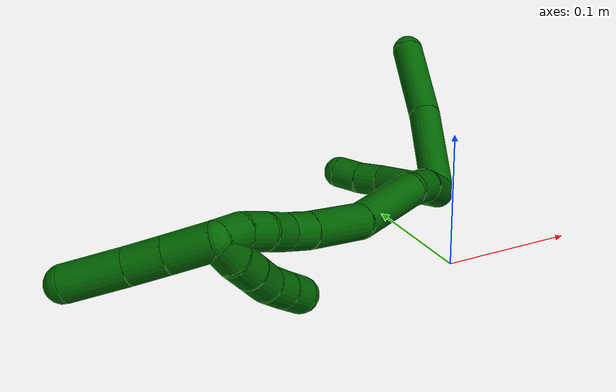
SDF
<sdf version="1.7">
 <world name="default">
  <model name="6">
   <static>0</static>
   <link name="6">
    <collision name="collision-cylinder-e_1_2_8">
     <pose>0.034886 -0.01831 0.001434 1.49261 1.08621 1.01825</pose>
     <geometry><cylinder><radius>0.0125</radius><length>0.078851</length></cylinder></geometry>
     <surface>
      <friction><ode><mu>1.16</mu><mu2>1.16</mu2><slip1>0</slip1><slip2>0</slip2></ode></friction>
      <contact><ode><kp>1e+06</kp><kd>1</kd><max_vel>0</max_vel><min_depth>0.001</min_depth></ode></contact>
     </surface>
    </collision>
    <visual name="visual-cylinder-e_1_2_8">
     <pose>0.034886 -0.01831 0.001434 1.49261 1.08621 1.01825</pose>
     <geometry><cylinder><radius>0.0125</radius><length>0.078851</length></cylinder></geometry>
     <material><ambient>0 0.392157 0.003922 1</ambient></material>
    </visual>
    <collision name="collision-cylinder-e_2_8_6">
     <pose>0.099933 -0.055207 0.006099 1.39875 1.01182 0.872228</pose>
     <geometry><cylinder><radius>0.0125</radius><length>0.071149</length></cylinder></geometry>
     <surface>
      <friction><ode><mu>1.16</mu><mu2>1.16</mu2><slip1>0</slip1><slip2>0</slip2></ode></friction>
      <contact><ode><kp>1e+06</kp><kd>1</kd><max_vel>0</max_vel><min_depth>0.001</min_depth></ode></contact>
     </surface>
    </collision>
    <visual name="visual-cylinder-e_2_8_6">
     <pose>0.099933 -0.055207 0.006099 1.39875 1.01182 0.872228</pose>
     <geometry><cylinder><radius>0.0125</radius><length>0.071149</length></cylinder></geometry>
     <material><ambient>0 0.392157 0.003922 1</ambient></material>
    </visual>
    <collision name="collision-cylinder-e_1_2_9">
     <pose>0.016898 -0.003926 0.023812 0.163394 0.610862 0.051621</pose>
     <geometry><cylinder><radius>0.0125</radius><length>0.058922</length></cylinder></geometry>
     <surface>
      <friction><ode><mu>1.16</mu><mu2>1.16</mu2><slip1>0</slip1><slip2>0</slip2></ode></friction>
      <contact><ode><kp>1e+06</kp><kd>1</kd><max_vel>0</max_vel><min_depth>0.001</min_depth></ode></contact>
     </surface>
    </collision>
    <visual name="visual-cylinder-e_1_2_9">
     <pose>0.016898 -0.003926 0.023812 0.163394 0.610862 0.051621</pose>
     <geometry><cylinder><radius>0.0125</radius><length>0.058922</length></cylinder></geometry>
     <material><ambient>0 0.392157 0.003922 1</ambient></material>
    </visual>
    <collision name="collision-cylinder-e_2_9_10">
     <pose>0.037312 -0.010682 0.056883 0.296688 0.34826 0.052565</pose>
     <geometry><cylinder><radius>0.0125</radius><length>0.020604</length></cylinder></geometry>
     <surface>
      <friction><ode><mu>1.16</mu><mu2>1.16</mu2><slip1>0</slip1><slip2>0</slip2></ode></friction>
      <contact><ode><kp>1e+06</kp><kd>1</kd><max_vel>0</max_vel><min_depth>0.001</min_depth></ode></contact>
     </surface>
    </collision>
    <visual name="visual-cylinder-e_2_9_10">
     <pose>0.037312 -0.010682 0.056883 0.296688 0.34826 0.052565</pose>
     <geometry><cylinder><radius>0.0125</radius><length>0.020604</length></cylinder></geometry>
     <material><ambient>0 0.392157 0.003922 1</ambient></material>
    </visual>
    <collision name="collision-cylinder-e_3_10_5">
     <pose>0.045135 -0.017125 0.0747 0.399395 0.434266 0.089242</pose>
     <geometry><cylinder><radius>0.0125</radius><length>0.020475</length></cylinder></geometry>
     <surface>
      <friction><ode><mu>1.16</mu><mu2>1.16</mu2><slip1>0</slip1><slip2>0</slip2></ode></friction>
      <contact><ode><kp>1e+06</kp><kd>1</kd><max_vel>0</max_vel><min_depth>0.001</min_depth></ode></contact>
     </surface>
    </collision>
    <visual name="visual-cylinder-e_3_10_5">
     <pose>0.045135 -0.017125 0.0747 0.399395 0.434266 0.089242</pose>
     <geometry><cylinder><radius>0.0125</radius><length>0.020475</length></cylinder></geometry>
     <material><ambient>0 0.392157 0.003922 1</ambient></material>
    </visual>
    <collision name="collision-cylinder-e_1_2_11">
     <pose>-0.030693 -0.017772 -0.004792 1.83416 -1.0306 -1.27318</pose>
     <geometry><cylinder><radius>0.0125</radius><length>0.071579</length></cylinder></geometry>
     <surface>
      <friction><ode><mu>1.16</mu><mu2>1.16</mu2><slip1>0</slip1><slip2>0</slip2></ode></friction>
      <contact><ode><kp>1e+06</kp><kd>1</kd><max_vel>0</max_vel><min_depth>0.001</min_depth></ode></contact>
     </surface>
    </collision>
    <visual name="visual-cylinder-e_1_2_11">
     <pose>-0.030693 -0.017772 -0.004792 1.83416 -1.0306 -1.27318</pose>
     <geometry><cylinder><radius>0.0125</radius><length>0.071579</length></cylinder></geometry>
     <material><ambient>0 0.392157 0.003922 1</ambient></material>
    </visual>
    <collision name="collision-cylinder-e_2_11_12">
     <pose>-0.075369 -0.042046 -0.008255 1.36927 -1.12769 -0.953044</pose>
     <geometry><cylinder><radius>0.0125</radius><length>0.030954</length></cylinder></geometry>
     <surface>
      <friction><ode><mu>1.16</mu><mu2>1.16</mu2><slip1>0</slip1><slip2>0</slip2></ode></friction>
      <contact><ode><kp>1e+06</kp><kd>1</kd><max_vel>0</max_vel><min_depth>0.001</min_depth></ode></contact>
     </surface>
    </collision>
    <visual name="visual-cylinder-e_2_11_12">
     <pose>-0.075369 -0.042046 -0.008255 1.36927 -1.12769 -0.953044</pose>
     <geometry><cylinder><radius>0.0125</radius><length>0.030954</length></cylinder></geometry>
     <material><ambient>0 0.392157 0.003922 1</ambient></material>
    </visual>
    <collision name="collision-cylinder-e_3_12_13">
     <pose>-0.118081 -0.055905 0.005007 0.552519 -1.1168 -0.350593</pose>
     <geometry><cylinder><radius>0.0125</radius><length>0.063935</length></cylinder></geometry>
     <surface>
      <friction><ode><mu>1.16</mu><mu2>1.16</mu2><slip1>0</slip1><slip2>0</slip2></ode></friction>
      <contact><ode><kp>1e+06</kp><kd>1</kd><max_vel>0</max_vel><min_depth>0.001</min_depth></ode></contact>
     </surface>
    </collision>
    <visual name="visual-cylinder-e_3_12_13">
     <pose>-0.118081 -0.055905 0.005007 0.552519 -1.1168 -0.350593</pose>
     <geometry><cylinder><radius>0.0125</radius><length>0.063935</length></cylinder></geometry>
     <material><ambient>0 0.392157 0.003922 1</ambient></material>
    </visual>
    <collision name="collision-cylinder-e_4_13_14">
     <pose>-0.166557 -0.074702 0.0274 0.830053 -0.905303 -0.422188</pose>
     <geometry><cylinder><radius>0.0125</radius><length>0.050207</length></cylinder></geometry>
     <surface>
      <friction><ode><mu>1.16</mu><mu2>1.16</mu2><slip1>0</slip1><slip2>0</slip2></ode></friction>
      <contact><ode><kp>1e+06</kp><kd>1</kd><max_vel>0</max_vel><min_depth>0.001</min_depth></ode></contact>
     </surface>
    </collision>
    <visual name="visual-cylinder-e_4_13_14">
     <pose>-0.166557 -0.074702 0.0274 0.830053 -0.905303 -0.422188</pose>
     <geometry><cylinder><radius>0.0125</radius><length>0.050207</length></cylinder></geometry>
     <material><ambient>0 0.392157 0.003922 1</ambient></material>
    </visual>
    <collision name="collision-cylinder-e_5_14_15">
     <pose>-0.193861 -0.091593 0.042194 0.899222 -0.826177 -0.416889</pose>
     <geometry><cylinder><radius>0.0125</radius><length>0.020554</length></cylinder></geometry>
     <surface>
      <friction><ode><mu>1.16</mu><mu2>1.16</mu2><slip1>0</slip1><slip2>0</slip2></ode></friction>
      <contact><ode><kp>1e+06</kp><kd>1</kd><max_vel>0</max_vel><min_depth>0.001</min_depth></ode></contact>
     </surface>
    </collision>
    <visual name="visual-cylinder-e_5_14_15">
     <pose>-0.193861 -0.091593 0.042194 0.899222 -0.826177 -0.416889</pose>
     <geometry><cylinder><radius>0.0125</radius><length>0.020554</length></cylinder></geometry>
     <material><ambient>0 0.392157 0.003922 1</ambient></material>
    </visual>
    <collision name="collision-cylinder-e_6_15_16">
     <pose>-0.209984 -0.103054 0.04861 1.23713 -0.932157 -0.687635</pose>
     <geometry><cylinder><radius>0.0125</radius><length>0.021337</length></cylinder></geometry>
     <surface>
      <friction><ode><mu>1.16</mu><mu2>1.16</mu2><slip1>0</slip1><slip2>0</slip2></ode></friction>
      <contact><ode><kp>1e+06</kp><kd>1</kd><max_vel>0</max_vel><min_depth>0.001</min_depth></ode></contact>
     </surface>
    </collision>
    <visual name="visual-cylinder-e_6_15_16">
     <pose>-0.209984 -0.103054 0.04861 1.23713 -0.932157 -0.687635</pose>
     <geometry><cylinder><radius>0.0125</radius><length>0.021337</length></cylinder></geometry>
     <material><ambient>0 0.392157 0.003922 1</ambient></material>
    </visual>
    <collision name="collision-cylinder-e_7_16_17">
     <pose>-0.226081 -0.114765 0.054453 0.987861 -0.83416 -0.46839</pose>
     <geometry><cylinder><radius>0.0125</radius><length>0.020332</length></cylinder></geometry>
     <surface>
      <friction><ode><mu>1.16</mu><mu2>1.16</mu2><slip1>0</slip1><slip2>0</slip2></ode></friction>
      <contact><ode><kp>1e+06</kp><kd>1</kd><max_vel>0</max_vel><min_depth>0.001</min_depth></ode></contact>
     </surface>
    </collision>
    <visual name="visual-cylinder-e_7_16_17">
     <pose>-0.226081 -0.114765 0.054453 0.987861 -0.83416 -0.46839</pose>
     <geometry><cylinder><radius>0.0125</radius><length>0.020332</length></cylinder></geometry>
     <material><ambient>0 0.392157 0.003922 1</ambient></material>
    </visual>
    <collision name="collision-cylinder-e_8_17_1">
     <pose>-0.242547 -0.124122 0.062466 0.709875 -1.01031 -0.404332</pose>
     <geometry><cylinder><radius>0.0125</radius><length>0.0211</length></cylinder></geometry>
     <surface>
      <friction><ode><mu>1.16</mu><mu2>1.16</mu2><slip1>0</slip1><slip2>0</slip2></ode></friction>
      <contact><ode><kp>1e+06</kp><kd>1</kd><max_vel>0</max_vel><min_depth>0.001</min_depth></ode></contact>
     </surface>
    </collision>
    <visual name="visual-cylinder-e_8_17_1">
     <pose>-0.242547 -0.124122 0.062466 0.709875 -1.01031 -0.404332</pose>
     <geometry><cylinder><radius>0.0125</radius><length>0.0211</length></cylinder></geometry>
     <material><ambient>0 0.392157 0.003922 1</ambient></material>
    </visual>
    <collision name="collision-cylinder-e_1_1_18">
     <pose>-0.25276 -0.128689 0.082198 0.058854 -0.082196 -0.002421</pose>
     <geometry><cylinder><radius>0.0125</radius><length>0.031116</length></cylinder></geometry>
     <surface>
      <friction><ode><mu>1.16</mu><mu2>1.16</mu2><slip1>0</slip1><slip2>0</slip2></ode></friction>
      <contact><ode><kp>1e+06</kp><kd>1</kd><max_vel>0</max_vel><min_depth>0.001</min_depth></ode></contact>
     </surface>
    </collision>
    <visual name="visual-cylinder-e_1_1_18">
     <pose>-0.25276 -0.128689 0.082198 0.058854 -0.082196 -0.002421</pose>
     <geometry><cylinder><radius>0.0125</radius><length>0.031116</length></cylinder></geometry>
     <material><ambient>0 0.392157 0.003922 1</ambient></material>
    </visual>
    <collision name="collision-cylinder-e_2_18_19">
     <pose>-0.255076 -0.130429 0.110673 0.063612 -0.0796 -0.002534</pose>
     <geometry><cylinder><radius>0.0125</radius><length>0.026128</length></cylinder></geometry>
     <surface>
      <friction><ode><mu>1.16</mu><mu2>1.16</mu2><slip1>0</slip1><slip2>0</slip2></ode></friction>
      <contact><ode><kp>1e+06</kp><kd>1</kd><max_vel>0</max_vel><min_depth>0.001</min_depth></ode></contact>
     </surface>
    </collision>
    <visual name="visual-cylinder-e_2_18_19">
     <pose>-0.255076 -0.130429 0.110673 0.063612 -0.0796 -0.002534</pose>
     <geometry><cylinder><radius>0.0125</radius><length>0.026128</length></cylinder></geometry>
     <material><ambient>0 0.392157 0.003922 1</ambient></material>
    </visual>
    <collision name="collision-cylinder-e_3_19_4">
     <pose>-0.258134 -0.13313 0.144869 0.088141 -0.094588 -0.004174</pose>
     <geometry><cylinder><radius>0.0125</radius><length>0.042756</length></cylinder></geometry>
     <surface>
      <friction><ode><mu>1.16</mu><mu2>1.16</mu2><slip1>0</slip1><slip2>0</slip2></ode></friction>
      <contact><ode><kp>1e+06</kp><kd>1</kd><max_vel>0</max_vel><min_depth>0.001</min_depth></ode></contact>
     </surface>
    </collision>
    <visual name="visual-cylinder-e_3_19_4">
     <pose>-0.258134 -0.13313 0.144869 0.088141 -0.094588 -0.004174</pose>
     <geometry><cylinder><radius>0.0125</radius><length>0.042756</length></cylinder></geometry>
     <material><ambient>0 0.392157 0.003922 1</ambient></material>
    </visual>
    <collision name="collision-cylinder-e_1_1_20">
     <pose>-0.247738 -0.118528 0.06607 -1.64094 0.383879 -0.411042</pose>
     <geometry><cylinder><radius>0.0125</radius><length>0.02</length></cylinder></geometry>
     <surface>
      <friction><ode><mu>1.16</mu><mu2>1.16</mu2><slip1>0</slip1><slip2>0</slip2></ode></friction>
      <contact><ode><kp>1e+06</kp><kd>1</kd><max_vel>0</max_vel><min_depth>0.001</min_depth></ode></contact>
     </surface>
    </collision>
    <visual name="visual-cylinder-e_1_1_20">
     <pose>-0.247738 -0.118528 0.06607 -1.64094 0.383879 -0.411042</pose>
     <geometry><cylinder><radius>0.0125</radius><length>0.02</length></cylinder></geometry>
     <material><ambient>0 0.392157 0.003922 1</ambient></material>
    </visual>
    <collision name="collision-cylinder-e_2_20_21">
     <pose>-0.238584 -0.100883 0.064896 -1.63319 0.571382 -0.606042</pose>
     <geometry><cylinder><radius>0.0125</radius><length>0.02</length></cylinder></geometry>
     <surface>
      <friction><ode><mu>1.16</mu><mu2>1.16</mu2><slip1>0</slip1><slip2>0</slip2></ode></friction>
      <contact><ode><kp>1e+06</kp><kd>1</kd><max_vel>0</max_vel><min_depth>0.001</min_depth></ode></contact>
     </surface>
    </collision>
    <visual name="visual-cylinder-e_2_20_21">
     <pose>-0.238584 -0.100883 0.064896 -1.63319 0.571382 -0.606042</pose>
     <geometry><cylinder><radius>0.0125</radius><length>0.02</length></cylinder></geometry>
     <material><ambient>0 0.392157 0.003922 1</ambient></material>
    </visual>
    <collision name="collision-cylinder-e_3_21_22">
     <pose>-0.227416 -0.084314 0.064282 -1.58169 0.613901 -0.620204</pose>
     <geometry><cylinder><radius>0.0125</radius><length>0.02</length></cylinder></geometry>
     <surface>
      <friction><ode><mu>1.16</mu><mu2>1.16</mu2><slip1>0</slip1><slip2>0</slip2></ode></friction>
      <contact><ode><kp>1e+06</kp><kd>1</kd><max_vel>0</max_vel><min_depth>0.001</min_depth></ode></contact>
     </surface>
    </collision>
    <visual name="visual-cylinder-e_3_21_22">
     <pose>-0.227416 -0.084314 0.064282 -1.58169 0.613901 -0.620204</pose>
     <geometry><cylinder><radius>0.0125</radius><length>0.02</length></cylinder></geometry>
     <material><ambient>0 0.392157 0.003922 1</ambient></material>
    </visual>
    <collision name="collision-cylinder-e_4_22_23">
     <pose>-0.214836 -0.068933 0.062947 -1.74197 0.75037 -0.875056</pose>
     <geometry><cylinder><radius>0.0125</radius><length>0.02</length></cylinder></geometry>
     <surface>
      <friction><ode><mu>1.16</mu><mu2>1.16</mu2><slip1>0</slip1><slip2>0</slip2></ode></friction>
      <contact><ode><kp>1e+06</kp><kd>1</kd><max_vel>0</max_vel><min_depth>0.001</min_depth></ode></contact>
     </surface>
    </collision>
    <visual name="visual-cylinder-e_4_22_23">
     <pose>-0.214836 -0.068933 0.062947 -1.74197 0.75037 -0.875056</pose>
     <geometry><cylinder><radius>0.0125</radius><length>0.02</length></cylinder></geometry>
     <material><ambient>0 0.392157 0.003922 1</ambient></material>
    </visual>
    <collision name="collision-cylinder-e_5_23_3">
     <pose>-0.200955 -0.05475 0.060492 -1.74245 0.784141 -0.913365</pose>
     <geometry><cylinder><radius>0.0125</radius><length>0.02</length></cylinder></geometry>
     <surface>
      <friction><ode><mu>1.16</mu><mu2>1.16</mu2><slip1>0</slip1><slip2>0</slip2></ode></friction>
      <contact><ode><kp>1e+06</kp><kd>1</kd><max_vel>0</max_vel><min_depth>0.001</min_depth></ode></contact>
     </surface>
    </collision>
    <visual name="visual-cylinder-e_5_23_3">
     <pose>-0.200955 -0.05475 0.060492 -1.74245 0.784141 -0.913365</pose>
     <geometry><cylinder><radius>0.0125</radius><length>0.02</length></cylinder></geometry>
     <material><ambient>0 0.392157 0.003922 1</ambient></material>
    </visual>
    <collision name="collision-sphere-3">
     <pose>-0.193893 -0.047774 0.059282 0 -0 0</pose>
     <geometry><sphere><radius>0.0125</radius></sphere></geometry>
     <surface>
      <friction><ode><mu>1.16</mu><mu2>1.16</mu2><slip1>0</slip1><slip2>0</slip2></ode></friction>
      <contact><ode><kp>1e+06</kp><kd>1</kd><max_vel>0</max_vel><min_depth>0.001</min_depth></ode></contact>
     </surface>
    </collision>
    <visual name="visual-sphere-3">
     <pose>-0.193893 -0.047774 0.059282 0 -0 0</pose>
     <geometry><sphere><radius>0.0125</radius></sphere></geometry>
     <material><ambient>0 0.392157 0.003922 1</ambient></material>
    </visual>
    <collision name="collision-sphere-23">
     <pose>-0.208017 -0.061726 0.061701 0 -0 0</pose>
     <geometry><sphere><radius>0.0125</radius></sphere></geometry>
     <surface>
      <friction><ode><mu>1.16</mu><mu2>1.16</mu2><slip1>0</slip1><slip2>0</slip2></ode></friction>
      <contact><ode><kp>1e+06</kp><kd>1</kd><max_vel>0</max_vel><min_depth>0.001</min_depth></ode></contact>
     </surface>
    </collision>
    <visual name="visual-sphere-23">
     <pose>-0.208017 -0.061726 0.061701 0 -0 0</pose>
     <geometry><sphere><radius>0.0125</radius></sphere></geometry>
     <material><ambient>0 0.392157 0.003922 1</ambient></material>
    </visual>
    <collision name="collision-sphere-22">
     <pose>-0.221655 -0.076141 0.064193 0 -0 0</pose>
     <geometry><sphere><radius>0.0125</radius></sphere></geometry>
     <surface>
      <friction><ode><mu>1.16</mu><mu2>1.16</mu2><slip1>0</slip1><slip2>0</slip2></ode></friction>
      <contact><ode><kp>1e+06</kp><kd>1</kd><max_vel>0</max_vel><min_depth>0.001</min_depth></ode></contact>
     </surface>
    </collision>
    <visual name="visual-sphere-22">
     <pose>-0.221655 -0.076141 0.064193 0 -0 0</pose>
     <geometry><sphere><radius>0.0125</radius></sphere></geometry>
     <material><ambient>0 0.392157 0.003922 1</ambient></material>
    </visual>
    <collision name="collision-sphere-21">
     <pose>-0.233177 -0.092488 0.064371 0 -0 0</pose>
     <geometry><sphere><radius>0.0125</radius></sphere></geometry>
     <surface>
      <friction><ode><mu>1.16</mu><mu2>1.16</mu2><slip1>0</slip1><slip2>0</slip2></ode></friction>
      <contact><ode><kp>1e+06</kp><kd>1</kd><max_vel>0</max_vel><min_depth>0.001</min_depth></ode></contact>
     </surface>
    </collision>
    <visual name="visual-sphere-21">
     <pose>-0.233177 -0.092488 0.064371 0 -0 0</pose>
     <geometry><sphere><radius>0.0125</radius></sphere></geometry>
     <material><ambient>0 0.392157 0.003922 1</ambient></material>
    </visual>
    <collision name="collision-sphere-20">
     <pose>-0.243992 -0.109278 0.06542 0 -0 0</pose>
     <geometry><sphere><radius>0.0125</radius></sphere></geometry>
     <surface>
      <friction><ode><mu>1.16</mu><mu2>1.16</mu2><slip1>0</slip1><slip2>0</slip2></ode></friction>
      <contact><ode><kp>1e+06</kp><kd>1</kd><max_vel>0</max_vel><min_depth>0.001</min_depth></ode></contact>
     </surface>
    </collision>
    <visual name="visual-sphere-20">
     <pose>-0.243992 -0.109278 0.06542 0 -0 0</pose>
     <geometry><sphere><radius>0.0125</radius></sphere></geometry>
     <material><ambient>0 0.392157 0.003922 1</ambient></material>
    </visual>
    <collision name="collision-sphere-4">
     <pose>-0.260153 -0.135004 0.166069 0 -0 0</pose>
     <geometry><sphere><radius>0.0125</radius></sphere></geometry>
     <surface>
      <friction><ode><mu>1.16</mu><mu2>1.16</mu2><slip1>0</slip1><slip2>0</slip2></ode></friction>
      <contact><ode><kp>1e+06</kp><kd>1</kd><max_vel>0</max_vel><min_depth>0.001</min_depth></ode></contact>
     </surface>
    </collision>
    <visual name="visual-sphere-4">
     <pose>-0.260153 -0.135004 0.166069 0 -0 0</pose>
     <geometry><sphere><radius>0.0125</radius></sphere></geometry>
     <material><ambient>0 0.392157 0.003922 1</ambient></material>
    </visual>
    <collision name="collision-sphere-5">
     <pose>0.049442 -0.020736 0.083256 0 -0 0</pose>
     <geometry><sphere><radius>0.0125</radius></sphere></geometry>
     <surface>
      <friction><ode><mu>1.16</mu><mu2>1.16</mu2><slip1>0</slip1><slip2>0</slip2></ode></friction>
      <contact><ode><kp>1e+06</kp><kd>1</kd><max_vel>0</max_vel><min_depth>0.001</min_depth></ode></contact>
     </surface>
    </collision>
    <visual name="visual-sphere-5">
     <pose>0.049442 -0.020736 0.083256 0 -0 0</pose>
     <geometry><sphere><radius>0.0125</radius></sphere></geometry>
     <material><ambient>0 0.392157 0.003922 1</ambient></material>
    </visual>
    <collision name="collision-sphere-10">
     <pose>0.040827 -0.013513 0.066144 0 -0 0</pose>
     <geometry><sphere><radius>0.0125</radius></sphere></geometry>
     <surface>
      <friction><ode><mu>1.16</mu><mu2>1.16</mu2><slip1>0</slip1><slip2>0</slip2></ode></friction>
      <contact><ode><kp>1e+06</kp><kd>1</kd><max_vel>0</max_vel><min_depth>0.001</min_depth></ode></contact>
     </surface>
    </collision>
    <visual name="visual-sphere-10">
     <pose>0.040827 -0.013513 0.066144 0 -0 0</pose>
     <geometry><sphere><radius>0.0125</radius></sphere></geometry>
     <material><ambient>0 0.392157 0.003922 1</ambient></material>
    </visual>
    <collision name="collision-sphere-6">
     <pose>0.130093 -0.073794 0.009328 0 -0 0</pose>
     <geometry><sphere><radius>0.0125</radius></sphere></geometry>
     <surface>
      <friction><ode><mu>1.16</mu><mu2>1.16</mu2><slip1>0</slip1><slip2>0</slip2></ode></friction>
      <contact><ode><kp>1e+06</kp><kd>1</kd><max_vel>0</max_vel><min_depth>0.001</min_depth></ode></contact>
     </surface>
    </collision>
    <visual name="visual-sphere-6">
     <pose>0.130093 -0.073794 0.009328 0 -0 0</pose>
     <geometry><sphere><radius>0.0125</radius></sphere></geometry>
     <material><ambient>0 0.392157 0.003922 1</ambient></material>
    </visual>
    <collision name="collision-sphere-9">
     <pose>0.033796 -0.007851 0.047623 0 -0 0</pose>
     <geometry><sphere><radius>0.0125</radius></sphere></geometry>
     <surface>
      <friction><ode><mu>1.16</mu><mu2>1.16</mu2><slip1>0</slip1><slip2>0</slip2></ode></friction>
      <contact><ode><kp>1e+06</kp><kd>1</kd><max_vel>0</max_vel><min_depth>0.001</min_depth></ode></contact>
     </surface>
    </collision>
    <visual name="visual-sphere-9">
     <pose>0.033796 -0.007851 0.047623 0 -0 0</pose>
     <geometry><sphere><radius>0.0125</radius></sphere></geometry>
     <material><ambient>0 0.392157 0.003922 1</ambient></material>
    </visual>
    <collision name="collision-sphere-2">
     <geometry><sphere><radius>0.0125</radius></sphere></geometry>
     <surface>
      <friction><ode><mu>1.16</mu><mu2>1.16</mu2><slip1>0</slip1><slip2>0</slip2></ode></friction>
      <contact><ode><kp>1e+06</kp><kd>1</kd><max_vel>0</max_vel><min_depth>0.001</min_depth></ode></contact>
     </surface>
    </collision>
    <visual name="visual-sphere-2">
     <geometry><sphere><radius>0.0125</radius></sphere></geometry>
     <material><ambient>0 0.392157 0.003922 1</ambient></material>
    </visual>
    <collision name="collision-sphere-19">
     <pose>-0.256115 -0.131257 0.12367 0 -0 0</pose>
     <geometry><sphere><radius>0.0125</radius></sphere></geometry>
     <surface>
      <friction><ode><mu>1.16</mu><mu2>1.16</mu2><slip1>0</slip1><slip2>0</slip2></ode></friction>
      <contact><ode><kp>1e+06</kp><kd>1</kd><max_vel>0</max_vel><min_depth>0.001</min_depth></ode></contact>
     </surface>
    </collision>
    <visual name="visual-sphere-19">
     <pose>-0.256115 -0.131257 0.12367 0 -0 0</pose>
     <geometry><sphere><radius>0.0125</radius></sphere></geometry>
     <material><ambient>0 0.392157 0.003922 1</ambient></material>
    </visual>
    <collision name="collision-sphere-8">
     <pose>0.069773 -0.03662 0.002869 0 -0 0</pose>
     <geometry><sphere><radius>0.0125</radius></sphere></geometry>
     <surface>
      <friction><ode><mu>1.16</mu><mu2>1.16</mu2><slip1>0</slip1><slip2>0</slip2></ode></friction>
      <contact><ode><kp>1e+06</kp><kd>1</kd><max_vel>0</max_vel><min_depth>0.001</min_depth></ode></contact>
     </surface>
    </collision>
    <visual name="visual-sphere-8">
     <pose>0.069773 -0.03662 0.002869 0 -0 0</pose>
     <geometry><sphere><radius>0.0125</radius></sphere></geometry>
     <material><ambient>0 0.392157 0.003922 1</ambient></material>
    </visual>
    <collision name="collision-sphere-11">
     <pose>-0.061387 -0.035544 -0.009584 0 -0 0</pose>
     <geometry><sphere><radius>0.0125</radius></sphere></geometry>
     <surface>
      <friction><ode><mu>1.16</mu><mu2>1.16</mu2><slip1>0</slip1><slip2>0</slip2></ode></friction>
      <contact><ode><kp>1e+06</kp><kd>1</kd><max_vel>0</max_vel><min_depth>0.001</min_depth></ode></contact>
     </surface>
    </collision>
    <visual name="visual-sphere-11">
     <pose>-0.061387 -0.035544 -0.009584 0 -0 0</pose>
     <geometry><sphere><radius>0.0125</radius></sphere></geometry>
     <material><ambient>0 0.392157 0.003922 1</ambient></material>
    </visual>
    <collision name="collision-sphere-12">
     <pose>-0.089351 -0.048547 -0.006927 0 -0 0</pose>
     <geometry><sphere><radius>0.0125</radius></sphere></geometry>
     <surface>
      <friction><ode><mu>1.16</mu><mu2>1.16</mu2><slip1>0</slip1><slip2>0</slip2></ode></friction>
      <contact><ode><kp>1e+06</kp><kd>1</kd><max_vel>0</max_vel><min_depth>0.001</min_depth></ode></contact>
     </surface>
    </collision>
    <visual name="visual-sphere-12">
     <pose>-0.089351 -0.048547 -0.006927 0 -0 0</pose>
     <geometry><sphere><radius>0.0125</radius></sphere></geometry>
     <material><ambient>0 0.392157 0.003922 1</ambient></material>
    </visual>
    <collision name="collision-sphere-13">
     <pose>-0.14681 -0.063263 0.01694 0 -0 0</pose>
     <geometry><sphere><radius>0.0125</radius></sphere></geometry>
     <surface>
      <friction><ode><mu>1.16</mu><mu2>1.16</mu2><slip1>0</slip1><slip2>0</slip2></ode></friction>
      <contact><ode><kp>1e+06</kp><kd>1</kd><max_vel>0</max_vel><min_depth>0.001</min_depth></ode></contact>
     </surface>
    </collision>
    <visual name="visual-sphere-13">
     <pose>-0.14681 -0.063263 0.01694 0 -0 0</pose>
     <geometry><sphere><radius>0.0125</radius></sphere></geometry>
     <material><ambient>0 0.392157 0.003922 1</ambient></material>
    </visual>
    <collision name="collision-sphere-14">
     <pose>-0.186304 -0.086141 0.03786 0 -0 0</pose>
     <geometry><sphere><radius>0.0125</radius></sphere></geometry>
     <surface>
      <friction><ode><mu>1.16</mu><mu2>1.16</mu2><slip1>0</slip1><slip2>0</slip2></ode></friction>
      <contact><ode><kp>1e+06</kp><kd>1</kd><max_vel>0</max_vel><min_depth>0.001</min_depth></ode></contact>
     </surface>
    </collision>
    <visual name="visual-sphere-14">
     <pose>-0.186304 -0.086141 0.03786 0 -0 0</pose>
     <geometry><sphere><radius>0.0125</radius></sphere></geometry>
     <material><ambient>0 0.392157 0.003922 1</ambient></material>
    </visual>
    <collision name="collision-sphere-15">
     <pose>-0.201418 -0.097045 0.046528 0 -0 0</pose>
     <geometry><sphere><radius>0.0125</radius></sphere></geometry>
     <surface>
      <friction><ode><mu>1.16</mu><mu2>1.16</mu2><slip1>0</slip1><slip2>0</slip2></ode></friction>
      <contact><ode><kp>1e+06</kp><kd>1</kd><max_vel>0</max_vel><min_depth>0.001</min_depth></ode></contact>
     </surface>
    </collision>
    <visual name="visual-sphere-15">
     <pose>-0.201418 -0.097045 0.046528 0 -0 0</pose>
     <geometry><sphere><radius>0.0125</radius></sphere></geometry>
     <material><ambient>0 0.392157 0.003922 1</ambient></material>
    </visual>
    <collision name="collision-sphere-16">
     <pose>-0.21855 -0.109063 0.050693 0 -0 0</pose>
     <geometry><sphere><radius>0.0125</radius></sphere></geometry>
     <surface>
      <friction><ode><mu>1.16</mu><mu2>1.16</mu2><slip1>0</slip1><slip2>0</slip2></ode></friction>
      <contact><ode><kp>1e+06</kp><kd>1</kd><max_vel>0</max_vel><min_depth>0.001</min_depth></ode></contact>
     </surface>
    </collision>
    <visual name="visual-sphere-16">
     <pose>-0.21855 -0.109063 0.050693 0 -0 0</pose>
     <geometry><sphere><radius>0.0125</radius></sphere></geometry>
     <material><ambient>0 0.392157 0.003922 1</ambient></material>
    </visual>
    <collision name="collision-sphere-17">
     <pose>-0.233611 -0.120467 0.058212 0 -0 0</pose>
     <geometry><sphere><radius>0.0125</radius></sphere></geometry>
     <surface>
      <friction><ode><mu>1.16</mu><mu2>1.16</mu2><slip1>0</slip1><slip2>0</slip2></ode></friction>
      <contact><ode><kp>1e+06</kp><kd>1</kd><max_vel>0</max_vel><min_depth>0.001</min_depth></ode></contact>
     </surface>
    </collision>
    <visual name="visual-sphere-17">
     <pose>-0.233611 -0.120467 0.058212 0 -0 0</pose>
     <geometry><sphere><radius>0.0125</radius></sphere></geometry>
     <material><ambient>0 0.392157 0.003922 1</ambient></material>
    </visual>
    <collision name="collision-sphere-1">
     <pose>-0.251483 -0.127777 0.06672 0 -0 0</pose>
     <geometry><sphere><radius>0.0125</radius></sphere></geometry>
     <surface>
      <friction><ode><mu>1.16</mu><mu2>1.16</mu2><slip1>0</slip1><slip2>0</slip2></ode></friction>
      <contact><ode><kp>1e+06</kp><kd>1</kd><max_vel>0</max_vel><min_depth>0.001</min_depth></ode></contact>
     </surface>
    </collision>
    <visual name="visual-sphere-1">
     <pose>-0.251483 -0.127777 0.06672 0 -0 0</pose>
     <geometry><sphere><radius>0.0125</radius></sphere></geometry>
     <material><ambient>0 0.392157 0.003922 1</ambient></material>
    </visual>
    <collision name="collision-sphere-18">
     <pose>-0.254038 -0.129601 0.097677 0 -0 0</pose>
     <geometry><sphere><radius>0.0125</radius></sphere></geometry>
     <surface>
      <friction><ode><mu>1.16</mu><mu2>1.16</mu2><slip1>0</slip1><slip2>0</slip2></ode></friction>
      <contact><ode><kp>1e+06</kp><kd>1</kd><max_vel>0</max_vel><min_depth>0.001</min_depth></ode></contact>
     </surface>
    </collision>
    <visual name="visual-sphere-18">
     <pose>-0.254038 -0.129601 0.097677 0 -0 0</pose>
     <geometry><sphere><radius>0.0125</radius></sphere></geometry>
     <material><ambient>0 0.392157 0.003922 1</ambient></material>
    </visual>
    <inertial>
     <pose>-0.098972 -0.062345 0.037461 0 -0 0</pose>
     <mass>0.75</mass>
     <inertia><ixx>8.6e-05</ixx><ixy>0</ixy><ixz>0</ixz><iyy>0.000154</iyy><iyz>0</iyz><izz>7.5e-05</izz></inertia>
    </inertial>
   </link>
   <pose>0.035897 0.076358 0.02095 -1.97258 -0.081278 0.929537</pose>
  </model>
 </world>
</sdf>
